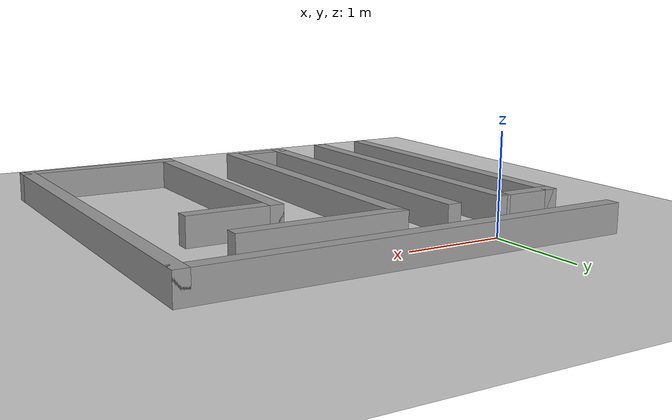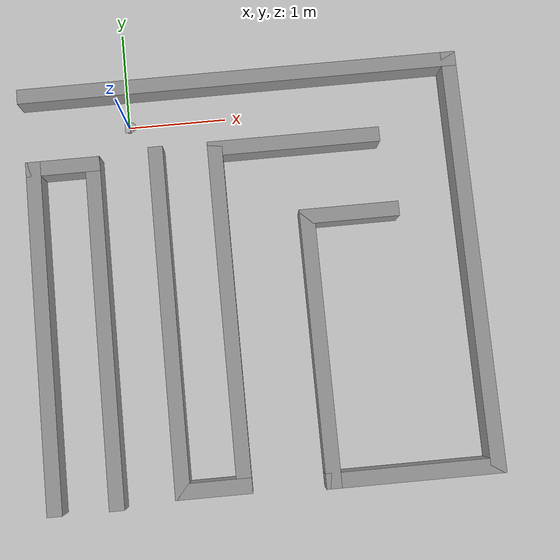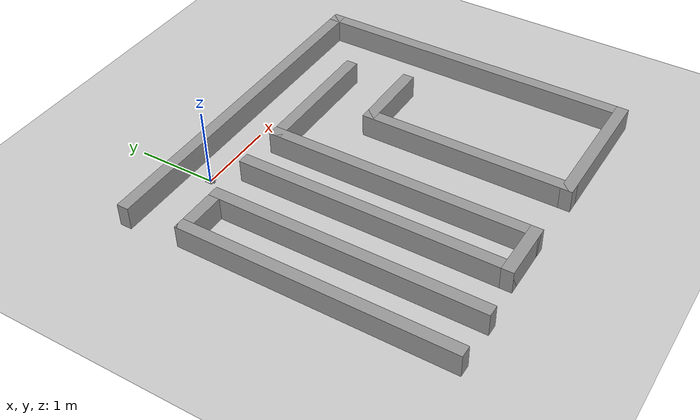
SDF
<sdf version="1.7">
 <world name="default">
  <light name="sun" type="directional">
   <pose>0 0 10 0 -0 0</pose>
   <diffuse>0.8 0.8 0.8 1</diffuse>
   <specular>0.2 0.2 0.2 1</specular>
   <attenuation>
    <range>1000</range>
    <constant>0.9</constant>
    <linear>0.01</linear>
    <quadratic>0.001</quadratic>
   </attenuation>
   <direction>-0.5 0.1 -0.9</direction>
   <spot><inner_angle>0</inner_angle><outer_angle>0</outer_angle><falloff>0</falloff></spot>
  </light>
  <model name="ground_plane">
   <static>1</static>
   <link name="link">
    <collision name="collision">
     <geometry><plane><normal>0 0 1</normal><size>100 100</size></plane></geometry>
     <surface><friction><ode><mu>100</mu><mu2>50</mu2></ode></friction></surface>
    </collision>
    <visual name="visual">
     <cast_shadows>0</cast_shadows>
     <geometry><plane><normal>0 0 1</normal><size>100 100</size></plane></geometry>
     <material>
      <script><uri>file://media/materials/scripts/gazebo.material</uri><name>Gazebo/Grey</name></script>
     </material>
    </visual>
   </link>
  </model>
  <gravity>0 0 -9.8</gravity>
  <magnetic_field>6e-06 2.3e-05 -4.2e-05</magnetic_field>
  <atmosphere type="adiabatic"/>
  <physics type="ode">
   <max_step_size>0.001</max_step_size>
   <real_time_factor>1</real_time_factor>
   <real_time_update_rate>1000</real_time_update_rate>
  </physics>
  <scene><ambient>0.4 0.4 0.4 1</ambient><background>0.7 0.7 0.7 1</background><shadows>1</shadows></scene>
  <audio><device>default</device></audio>
  <spherical_coordinates>
   <surface_model>EARTH_WGS84</surface_model>
   <latitude_deg>0</latitude_deg>
   <longitude_deg>0</longitude_deg>
   <elevation>0</elevation>
   <heading_deg>0</heading_deg>
  </spherical_coordinates>
  <model name="taurus">
   <link name="base_link_ground">
    <inertial>
     <pose>0.017695 -0.000371 0.016379 0 -0 0</pose>
     <mass>0.160258</mass>
     <inertia>
      <ixx>0.000140644</ixx>
      <ixy>1.0151e-06</ixy>
      <ixz>4.90235e-08</ixz>
      <iyy>0.000416537</iyy>
      <iyz>1.09317e-09</iyz>
      <izz>0.000286895</izz>
     </inertia>
    </inertial>
    <collision name="base_link_ground_fixed_joint_lump__base_link_collision">
     <geometry>
      <mesh><scale>1 1 1</scale><uri>model://taurus_description/meshes/base_link.STL</uri></mesh>
     </geometry>
    </collision>
    <collision name="base_link_ground_fixed_joint_lump__Base_castor_link_collision_1">
     <pose>0.056575 0 0.00343 0 -0 0</pose>
     <geometry>
      <mesh><scale>1 1 1</scale><uri>model://taurus_description/meshes/Base_castor_link.STL</uri></mesh>
     </geometry>
    </collision>
    <collision name="base_link_ground_fixed_joint_lump__Scan_link_collision_2">
     <pose>0.03982 9.5e-05 0.016343 0 -0 0</pose>
     <geometry>
      <mesh><scale>1 1 1</scale><uri>model://taurus_description/meshes/Scan_link.STL</uri></mesh>
     </geometry>
    </collision>
    <visual name="base_link_ground_fixed_joint_lump__base_link_visual">
     <geometry>
      <mesh><scale>1 1 1</scale><uri>model://taurus_description/meshes/base_link.STL</uri></mesh>
     </geometry>
    </visual>
    <visual name="base_link_ground_fixed_joint_lump__Base_castor_link_visual_1">
     <pose>0.056575 0 0.00343 0 -0 0</pose>
     <geometry>
      <mesh><scale>1 1 1</scale><uri>model://taurus_description/meshes/Base_castor_link.STL</uri></mesh>
     </geometry>
    </visual>
    <visual name="base_link_ground_fixed_joint_lump__Scan_link_visual_2">
     <pose>0.03982 9.5e-05 0.016343 0 -0 0</pose>
     <geometry>
      <mesh><scale>1 1 1</scale><uri>model://taurus_description/meshes/Scan_link.STL</uri></mesh>
     </geometry>
    </visual>
   </link>
   <joint name="Caster_ball_joint" type="revolute">
    <pose relative_to="base_link_ground">0.056562 -3.8e-05 -0.000691 0 -0 0</pose>
    <parent>base_link_ground</parent>
    <child>Caster_ball_link</child>
    <axis>
     <xyz>1 0 1</xyz>
     <limit><lower>-1e+16</lower><upper>1e+16</upper></limit>
     <dynamics><spring_reference>0</spring_reference><spring_stiffness>0</spring_stiffness></dynamics>
    </axis>
   </joint>
   <link name="Caster_ball_link">
    <pose relative_to="Caster_ball_joint">0 0 0 0 -0 0</pose>
    <inertial>
     <mass>0.002</mass>
     <inertia><ixx>0.0004</ixx><ixy>0</ixy><ixz>0</ixz><iyy>0.0004</iyy><iyz>0</iyz><izz>1e-05</izz></inertia>
    </inertial>
    <collision name="Caster_ball_link_collision">
     <geometry>
      <mesh><scale>1 1 1</scale><uri>model://taurus_description/meshes/Caster_ball_link.STL</uri></mesh>
     </geometry>
    </collision>
    <visual name="Caster_ball_link_visual">
     <geometry>
      <mesh><scale>1 1 1</scale><uri>model://taurus_description/meshes/Caster_ball_link.STL</uri></mesh>
     </geometry>
    </visual>
   </link>
   <joint name="Rueda_derecha_joint" type="revolute">
    <pose relative_to="base_link_ground">-0.0043 -0.059687 0.007947 -1.5708 0 0</pose>
    <parent>base_link_ground</parent>
    <child>Rueda_derecha_link</child>
    <axis>
     <xyz>0 0 1</xyz>
     <limit><lower>-1e+16</lower><upper>1e+16</upper></limit>
     <dynamics><spring_reference>0</spring_reference><spring_stiffness>0</spring_stiffness></dynamics>
    </axis>
   </joint>
   <link name="Rueda_derecha_link">
    <pose relative_to="Rueda_derecha_joint">0 0 0 0 -0 0</pose>
    <inertial>
     <pose>-2e-06 5.1e-05 0.012107 0 -0 0</pose>
     <mass>0.03</mass>
     <inertia><ixx>2e-05</ixx><ixy>0</ixy><ixz>0</ixz><iyy>2e-05</iyy><iyz>0</iyz><izz>0.0001</izz></inertia>
    </inertial>
    <collision name="Rueda_derecha_link_collision">
     <geometry>
      <mesh><scale>1 1 1</scale><uri>model://taurus_description/meshes/Rueda_derecha_link.STL</uri></mesh>
     </geometry>
    </collision>
    <visual name="Rueda_derecha_link_visual">
     <geometry>
      <mesh><scale>1 1 1</scale><uri>model://taurus_description/meshes/Rueda_derecha_link.STL</uri></mesh>
     </geometry>
    </visual>
   </link>
   <joint name="Rueda_izquierda_joint" type="revolute">
    <pose relative_to="base_link_ground">-0.004329 0.036579 0.00807 -1.5708 0 0</pose>
    <parent>base_link_ground</parent>
    <child>Rueda_izquierda_link</child>
    <axis>
     <xyz>0 0 1</xyz>
     <limit><lower>-1e+16</lower><upper>1e+16</upper></limit>
     <dynamics><spring_reference>0</spring_reference><spring_stiffness>0</spring_stiffness></dynamics>
    </axis>
   </joint>
   <link name="Rueda_izquierda_link">
    <pose relative_to="Rueda_izquierda_joint">0 0 0 0 -0 0</pose>
    <inertial>
     <pose>-2e-06 -8.5e-05 0.010976 0 -0 0</pose>
     <mass>0.03</mass>
     <inertia><ixx>2e-05</ixx><ixy>0</ixy><ixz>0</ixz><iyy>2e-05</iyy><iyz>0</iyz><izz>0.0001</izz></inertia>
    </inertial>
    <collision name="Rueda_izquierda_link_collision">
     <geometry>
      <mesh><scale>1 1 1</scale><uri>model://taurus_description/meshes/Rueda_izquierda_link.STL</uri></mesh>
     </geometry>
    </collision>
    <visual name="Rueda_izquierda_link_visual">
     <geometry>
      <mesh><scale>1 1 1</scale><uri>model://taurus_description/meshes/Rueda_izquierda_link.STL</uri></mesh>
     </geometry>
    </visual>
   </link>
   <plugin name="gazebo_ros2_control" filename="libgazebo_ros2_control.so">
    <robot_param>robot_description</robot_param>
    <robot_param_node>robot_state_publisher</robot_param_node>
    <parameters>/home/rvjacome/catkin_ws/install/taurus_controller/share/taurus_controller/config/taurus_controllers.yaml</parameters>
   </plugin>
   <plugin name="two_wheeled_robot_diff_drive" filename="libgazebo_ros_diff_drive.so">
    <update_rate>100</update_rate>
    <left_joint>Rueda_izquierda_joint</left_joint>
    <right_joint>Rueda_derecha_joint</right_joint>
    <wheel_separation>0.07</wheel_separation>
    <wheel_diameter>0.016</wheel_diameter>
    <max_wheel_torque>20</max_wheel_torque>
    <max_wheel_acceleration>20.0</max_wheel_acceleration>
    <command_topic>cmd_vel</command_topic>
    <publish_odom>1</publish_odom>
    <publish_odom_tf>0</publish_odom_tf>
    <publish_wheel_tf>1</publish_wheel_tf>
    <odometry_topic>odom</odometry_topic>
    <odometry_frame>odom_link</odometry_frame>
    <robot_base_frame>base_footprint</robot_base_frame>
    <odometry_source>1</odometry_source>
    <ros><remapping>odom:=wheel/odometry</remapping></ros>
   </plugin>
   <static>0</static>
   <plugin name="gazebo_ros_joint_state_publisher" filename="libgazebo_ros_joint_state_publisher.so">
    <update_rate>100</update_rate>
    <joint_name>Base_castor_joint</joint_name>
    <joint_name>Caster_ball_joint</joint_name>
   </plugin>
   <pose>0.004977 -0.00096 0.006851 -0.001125 0.027155 -0.012556</pose>
  </model>
  <model name="maze">
   <pose>1.15938 -1.71349 0 0 -0 0</pose>
   <link name="Wall_17">
    <collision name="Wall_17_Collision">
     <geometry><box><size>3.5 0.15 0.3</size></box></geometry>
     <pose>0 0 0.15 0 -0 0</pose>
    </collision>
    <visual name="Wall_17_Visual">
     <pose>0 0 0.15 0 -0 0</pose>
     <geometry><box><size>3.5 0.15 0.3</size></box></geometry>
     <material>
      <script><uri>file://media/materials/scripts/gazebo.material</uri><name>Gazebo/Grey</name></script>
      <ambient>1 1 1 1</ambient>
     </material>
     <meta><layer>0</layer></meta>
    </visual>
    <pose>-2.129 -0.3835 0 0 -0 1.5708</pose>
   </link>
   <link name="Wall_18">
    <collision name="Wall_18_Collision">
     <geometry><box><size>0.75 0.15 0.3</size></box></geometry>
     <pose>0 0 0.15 0 -0 0</pose>
    </collision>
    <visual name="Wall_18_Visual">
     <pose>0 0 0.15 0 -0 0</pose>
     <geometry><box><size>0.75 0.15 0.3</size></box></geometry>
     <material>
      <script><uri>file://media/materials/scripts/gazebo.material</uri><name>Gazebo/Grey</name></script>
      <ambient>1 1 1 1</ambient>
     </material>
     <meta><layer>0</layer></meta>
    </visual>
    <pose>-1.829 1.2915 0 0 -0 0</pose>
   </link>
   <link name="Wall_19">
    <collision name="Wall_19_Collision">
     <geometry><box><size>3.5 0.15 0.3</size></box></geometry>
     <pose>0 0 0.15 0 -0 0</pose>
    </collision>
    <visual name="Wall_19_Visual">
     <pose>0 0 0.15 0 -0 0</pose>
     <geometry><box><size>3.5 0.15 0.3</size></box></geometry>
     <material>
      <script><uri>file://media/materials/scripts/gazebo.material</uri><name>Gazebo/Grey</name></script>
      <ambient>1 1 1 1</ambient>
     </material>
     <meta><layer>0</layer></meta>
    </visual>
    <pose>-1.529 -0.3835 0 0 -0 -1.5708</pose>
   </link>
   <link name="Wall_22">
    <collision name="Wall_22_Collision">
     <geometry><box><size>3.5 0.15 0.3</size></box></geometry>
     <pose>0 0 0.15 0 -0 0</pose>
    </collision>
    <visual name="Wall_22_Visual">
     <pose>0 0 0.15 0 -0 0</pose>
     <geometry><box><size>3.5 0.15 0.3</size></box></geometry>
     <material>
      <script><uri>file://media/materials/scripts/gazebo.material</uri><name>Gazebo/Grey</name></script>
      <ambient>1 1 1 1</ambient>
     </material>
     <meta><layer>0</layer></meta>
    </visual>
    <pose>-0.887 -0.3375 0 0 -0 1.5708</pose>
   </link>
   <link name="Wall_24">
    <collision name="Wall_24_Collision">
     <geometry><box><size>0.75 0.15 0.3</size></box></geometry>
     <pose>0 0 0.15 0 -0 0</pose>
    </collision>
    <visual name="Wall_24_Visual">
     <pose>0 0 0.15 0 -0 0</pose>
     <geometry><box><size>0.75 0.15 0.3</size></box></geometry>
     <material>
      <script><uri>file://media/materials/scripts/gazebo.material</uri><name>Gazebo/Grey</name></script>
      <ambient>1 1 1 1</ambient>
     </material>
     <meta><layer>0</layer></meta>
    </visual>
    <pose>-0.587 -2.0125 0 0 -0 0</pose>
   </link>
   <link name="Wall_25">
    <collision name="Wall_25_Collision">
     <geometry><box><size>3.5 0.15 0.3</size></box></geometry>
     <pose>0 0 0.15 0 -0 0</pose>
    </collision>
    <visual name="Wall_25_Visual">
     <pose>0 0 0.15 0 -0 0</pose>
     <geometry><box><size>3.5 0.15 0.3</size></box></geometry>
     <material>
      <script><uri>file://media/materials/scripts/gazebo.material</uri><name>Gazebo/Grey</name></script>
      <ambient>1 1 1 1</ambient>
     </material>
     <meta><layer>0</layer></meta>
    </visual>
    <pose>-0.287 -0.3375 0 0 -0 1.5708</pose>
   </link>
   <link name="Wall_26">
    <collision name="Wall_26_Collision">
     <geometry><box><size>1.75 0.15 0.3</size></box></geometry>
     <pose>0 0 0.15 0 -0 0</pose>
    </collision>
    <visual name="Wall_26_Visual">
     <pose>0 0 0.15 0 -0 0</pose>
     <geometry><box><size>1.75 0.15 0.3</size></box></geometry>
     <material>
      <script><uri>file://media/materials/scripts/gazebo.material</uri><name>Gazebo/Grey</name></script>
      <ambient>1 1 1 1</ambient>
     </material>
     <meta><layer>0</layer></meta>
    </visual>
    <pose>0.513 1.3375 0 0 -0 0</pose>
   </link>
   <link name="Wall_28">
    <collision name="Wall_28_Collision">
     <geometry><box><size>4.5 0.15 0.3</size></box></geometry>
     <pose>0 0 0.15 0 -0 0</pose>
    </collision>
    <visual name="Wall_28_Visual">
     <pose>0 0 0.15 0 -0 0</pose>
     <geometry><box><size>4.5 0.15 0.3</size></box></geometry>
     <material>
      <script><uri>file://media/materials/scripts/gazebo.material</uri><name>Gazebo/Grey</name></script>
      <ambient>1 1 1 1</ambient>
     </material>
     <meta><layer>0</layer></meta>
    </visual>
    <pose>-0 2.0585 0 0 -0 0</pose>
   </link>
   <link name="Wall_29">
    <collision name="Wall_29_Collision">
     <geometry><box><size>4.25 0.15 0.3</size></box></geometry>
     <pose>0 0 0.15 0 -0 0</pose>
    </collision>
    <visual name="Wall_29_Visual">
     <pose>0 0 0.15 0 -0 0</pose>
     <geometry><box><size>4.25 0.15 0.3</size></box></geometry>
     <material>
      <script><uri>file://media/materials/scripts/gazebo.material</uri><name>Gazebo/Grey</name></script>
      <ambient>1 1 1 1</ambient>
     </material>
     <meta><layer>0</layer></meta>
    </visual>
    <pose>2.175 0.0085 0 0 -0 -1.5708</pose>
   </link>
   <link name="Wall_30">
    <collision name="Wall_30_Collision">
     <geometry><box><size>1.75 0.15 0.3</size></box></geometry>
     <pose>0 0 0.15 0 -0 0</pose>
    </collision>
    <visual name="Wall_30_Visual">
     <pose>0 0 0.15 0 -0 0</pose>
     <geometry><box><size>1.75 0.15 0.3</size></box></geometry>
     <material>
      <script><uri>file://media/materials/scripts/gazebo.material</uri><name>Gazebo/Grey</name></script>
      <ambient>1 1 1 1</ambient>
     </material>
     <meta><layer>0</layer></meta>
    </visual>
    <pose>1.375 -2.0415 0 0 -0 3.14159</pose>
   </link>
   <link name="Wall_31">
    <collision name="Wall_31_Collision">
     <geometry><box><size>2.75 0.15 0.3</size></box></geometry>
     <pose>0 0 0.15 0 -0 0</pose>
    </collision>
    <visual name="Wall_31_Visual">
     <pose>0 0 0.15 0 -0 0</pose>
     <geometry><box><size>2.75 0.15 0.3</size></box></geometry>
     <material>
      <script><uri>file://media/materials/scripts/gazebo.material</uri><name>Gazebo/Grey</name></script>
      <ambient>1 1 1 1</ambient>
     </material>
     <meta><layer>0</layer></meta>
    </visual>
    <pose>0.575 -0.7415 0 0 -0 1.5708</pose>
   </link>
   <link name="Wall_32">
    <collision name="Wall_32_Collision">
     <geometry><box><size>1 0.15 0.3</size></box></geometry>
     <pose>0 0 0.15 0 -0 0</pose>
    </collision>
    <visual name="Wall_32_Visual">
     <pose>0 0 0.15 0 -0 0</pose>
     <geometry><box><size>1 0.15 0.3</size></box></geometry>
     <material>
      <script><uri>file://media/materials/scripts/gazebo.material</uri><name>Gazebo/Grey</name></script>
      <ambient>1 1 1 1</ambient>
     </material>
     <meta><layer>0</layer></meta>
    </visual>
    <pose>1 0.5585 0 0 -0 0</pose>
   </link>
   <static>1</static>
  </model>
 </world>
</sdf>
